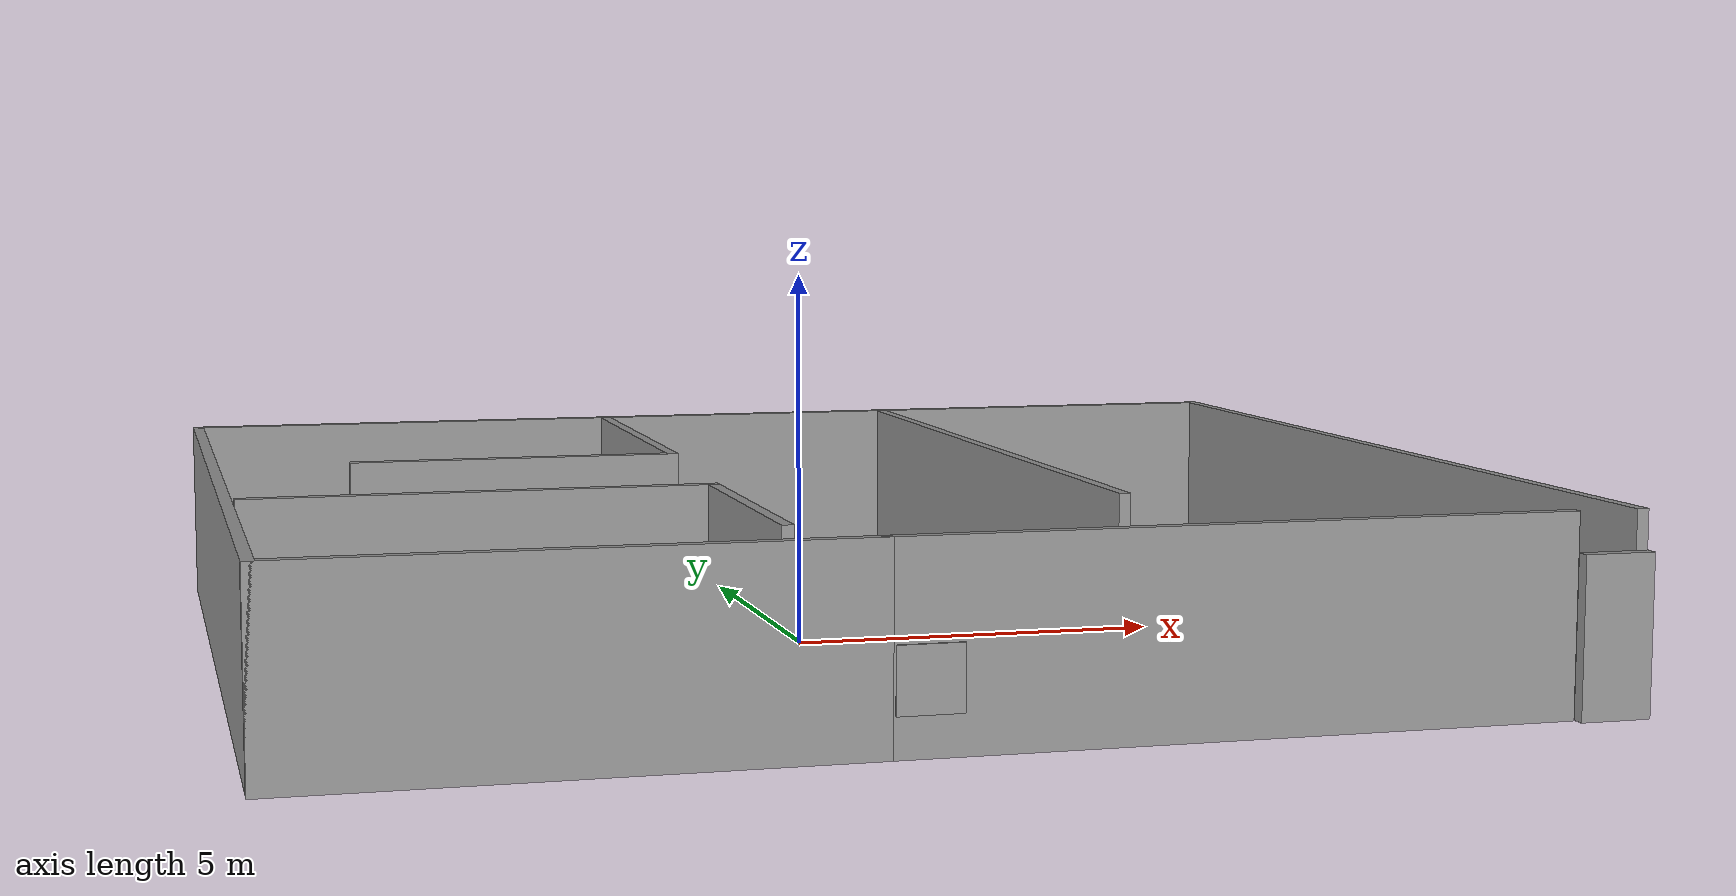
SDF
<?xml version='1.0'?>
<sdf version='1.7'>
  <model name='world'>
    <pose>0.352034 -0.289109 0 0 -0 0</pose>
    <link name='Door_0'>
      <collision name='Door_0_Collision'>
        <geometry>
          <box>
            <size>0.9 0.17 2</size>
          </box>
        </geometry>
        <pose>0 0 1 0 -0 0</pose>
      </collision>
      <visual name='Door_0_Visual'>
        <pose>0 0 1 0 -0 0</pose>
        <geometry>
          <box>
            <size>0.9 0.17 2</size>
          </box>
        </geometry>
        <material>
          <script>
            <uri>file://media/materials/scripts/gazebo.material</uri>
            <name>Gazebo/Grey</name>
          </script>
        </material>
      </visual>
      <pose>7.69908 -7.04958 0 0 -0 0</pose>
    </link>
    <link name='Wall_11'>
      <collision name='Wall_11_Collision'>
        <geometry>
          <box>
            <size>5.25 0.15 2.5</size>
          </box>
        </geometry>
        <pose>0 0 1.25 0 -0 0</pose>
      </collision>
      <visual name='Wall_11_Visual'>
        <pose>0 0 1.25 0 -0 0</pose>
        <geometry>
          <box>
            <size>5.25 0.15 2.5</size>
          </box>
        </geometry>
        <material>
          <script>
            <uri>file://media/materials/scripts/gazebo.material</uri>
            <name>Gazebo/Grey</name>
          </script>
          <ambient>1 1 1 1</ambient>
        </material>
        <meta>
          <layer>0</layer>
        </meta>
      </visual>
      <pose>-1.82437 4.22158 0 0 -0 -1.5708</pose>
    </link>
    <link name='Wall_12'>
      <collision name='Wall_12_Collision'>
        <geometry>
          <box>
            <size>4.5 0.15 2.5</size>
          </box>
        </geometry>
        <pose>0 0 1.25 0 -0 0</pose>
      </collision>
      <visual name='Wall_12_Visual'>
        <pose>0 0 1.25 0 -0 0</pose>
        <geometry>
          <box>
            <size>4.5 0.15 2.5</size>
          </box>
        </geometry>
        <material>
          <script>
            <uri>file://media/materials/scripts/gazebo.material</uri>
            <name>Gazebo/Grey</name>
          </script>
          <ambient>1 1 1 1</ambient>
        </material>
        <meta>
          <layer>0</layer>
        </meta>
      </visual>
      <pose>-3.99937 1.67158 0 0 -0 3.14159</pose>
    </link>
    <link name='Wall_14'>
      <collision name='Wall_14_Collision'>
        <geometry>
          <box>
            <size>11 0.15 2.5</size>
          </box>
        </geometry>
        <pose>0 0 1.25 0 -0 0</pose>
      </collision>
      <visual name='Wall_14_Visual'>
        <pose>0 0 1.25 0 -0 0</pose>
        <geometry>
          <box>
            <size>11 0.15 2.5</size>
          </box>
        </geometry>
        <material>
          <script>
            <uri>file://media/materials/scripts/gazebo.material</uri>
            <name>Gazebo/Grey</name>
          </script>
          <ambient>1 1 1 1</ambient>
        </material>
        <meta>
          <layer>0</layer>
        </meta>
      </visual>
      <pose>2.66985 1.41856 0 0 -0 -1.5708</pose>
    </link>
    <link name='Wall_16'>
      <collision name='Wall_16_Collision'>
        <geometry>
          <box>
            <size>6 0.15 2.5</size>
          </box>
        </geometry>
        <pose>0 0 1.25 0 -0 0</pose>
      </collision>
      <visual name='Wall_16_Visual'>
        <pose>0 0 1.25 0 -0 0</pose>
        <geometry>
          <box>
            <size>6 0.15 2.5</size>
          </box>
        </geometry>
        <material>
          <script>
            <uri>file://media/materials/scripts/gazebo.material</uri>
            <name>Gazebo/Grey</name>
          </script>
          <ambient>1 1 1 1</ambient>
        </material>
        <meta>
          <layer>0</layer>
        </meta>
      </visual>
      <pose>-4.94515 -1.85984 0 0 -0 0</pose>
    </link>
    <link name='Wall_17'>
      <collision name='Wall_17_Collision'>
        <geometry>
          <box>
            <size>4 0.15 2.5</size>
          </box>
        </geometry>
        <pose>0 0 1.25 0 -0 0</pose>
      </collision>
      <visual name='Wall_17_Visual'>
        <pose>0 0 1.25 0 -0 0</pose>
        <geometry>
          <box>
            <size>4 0.15 2.5</size>
          </box>
        </geometry>
        <material>
          <script>
            <uri>file://media/materials/scripts/gazebo.material</uri>
            <name>Gazebo/Grey</name>
          </script>
          <ambient>1 1 1 1</ambient>
        </material>
        <meta>
          <layer>0</layer>
        </meta>
      </visual>
      <pose>-2.02015 -3.78484 0 0 -0 -1.5708</pose>
    </link>
    <link name='Wall_2'>
      <collision name='Wall_2_Collision'>
        <geometry>
          <box>
            <size>14 0.15 2.5</size>
          </box>
        </geometry>
        <pose>0 0 1.25 0 -0 0</pose>
      </collision>
      <visual name='Wall_2_Visual'>
        <pose>0 0 1.25 0 -0 0</pose>
        <geometry>
          <box>
            <size>14 0.15 2.5</size>
          </box>
        </geometry>
        <material>
          <script>
            <uri>file://media/materials/scripts/gazebo.material</uri>
            <name>Gazebo/Grey</name>
          </script>
          <ambient>1 1 1 1</ambient>
        </material>
        <meta>
          <layer>0</layer>
        </meta>
      </visual>
      <pose>-8.05 0 0 0 -0 1.5708</pose>
    </link>
    <link name='Wall_3'>
      <collision name='Wall_3_Collision'>
        <geometry>
          <box>
            <size>16.25 0.15 2.5</size>
          </box>
        </geometry>
        <pose>0 0 1.25 0 -0 0</pose>
      </collision>
      <visual name='Wall_3_Visual'>
        <pose>0 0 1.25 0 -0 0</pose>
        <geometry>
          <box>
            <size>16.25 0.15 2.5</size>
          </box>
        </geometry>
        <material>
          <script>
            <uri>file://media/materials/scripts/gazebo.material</uri>
            <name>Gazebo/Grey</name>
          </script>
          <ambient>1 1 1 1</ambient>
        </material>
        <meta>
          <layer>0</layer>
        </meta>
      </visual>
      <pose>0 6.925 0 0 -0 0</pose>
    </link>
    <link name='Wall_5'>
      <collision name='Wall_5_Collision'>
        <geometry>
          <box>
            <size>14 0.15 2.5</size>
          </box>
        </geometry>
        <pose>0 0 1.25 0 -0 0</pose>
      </collision>
      <visual name='Wall_5_Visual'>
        <pose>0 0 1.25 0 -0 0</pose>
        <geometry>
          <box>
            <size>14 0.15 2.5</size>
          </box>
        </geometry>
        <material>
          <script>
            <uri>file://media/materials/scripts/gazebo.material</uri>
            <name>Gazebo/Grey</name>
          </script>
          <ambient>1 1 1 1</ambient>
        </material>
        <meta>
          <layer>0</layer>
        </meta>
      </visual>
      <pose>8.05 0 0 0 -0 -1.5708</pose>
    </link>
    <link name='Wall_7'>
      <collision name='Wall_7_Collision'>
        <geometry>
          <box>
            <size>7 0.15 2.5</size>
          </box>
        </geometry>
        <pose>0 0 1.25 0 -0 0</pose>
      </collision>
      <visual name='Wall_7_Visual'>
        <pose>0 0 1.25 0 -0 0</pose>
        <geometry>
          <box>
            <size>7 0.15 2.5</size>
          </box>
        </geometry>
        <material>
          <script>
            <uri>file://media/materials/scripts/gazebo.material</uri>
            <name>Gazebo/Grey</name>
          </script>
          <ambient>1 1 1 1</ambient>
        </material>
        <meta>
          <layer>0</layer>
        </meta>
      </visual>
      <pose>-4.625 -6.925 0 0 -0 0</pose>
    </link>
    <link name='Wall_9'>
      <collision name='Wall_9_Collision'>
        <geometry>
          <box>
            <size>8.5 0.15 2.5</size>
          </box>
        </geometry>
        <pose>0 0 1.25 0 -0 0</pose>
      </collision>
      <visual name='Wall_9_Visual'>
        <pose>0 0 1.25 0 -0 0</pose>
        <geometry>
          <box>
            <size>8.5 0.15 2.5</size>
          </box>
        </geometry>
        <material>
          <script>
            <uri>file://media/materials/scripts/gazebo.material</uri>
            <name>Gazebo/Grey</name>
          </script>
          <ambient>1 1 1 1</ambient>
        </material>
        <meta>
          <layer>0</layer>
        </meta>
      </visual>
      <pose>2.975 -6.925 0 0 -0 0</pose>
    </link>
    <link name='Window_1'>
      <collision name='Window_1_Collision'>
        <geometry>
          <box>
            <size>0.8 0.17 0.8</size>
          </box>
        </geometry>
        <pose>0 0 0.4 0 -0 0</pose>
      </collision>
      <visual name='Window_1_Visual'>
        <pose>0 0 0.4 0 -0 0</pose>
        <geometry>
          <box>
            <size>0.8 0.17 0.8</size>
          </box>
        </geometry>
        <material>
          <script>
            <uri>file://media/materials/scripts/gazebo.material</uri>
            <name>Gazebo/Grey</name>
          </script>
        </material>
      </visual>
      <pose>-0.700812 -6.94258 0.5 0 -0 0</pose>
    </link>
    <static>1</static>
  </model>
</sdf>
